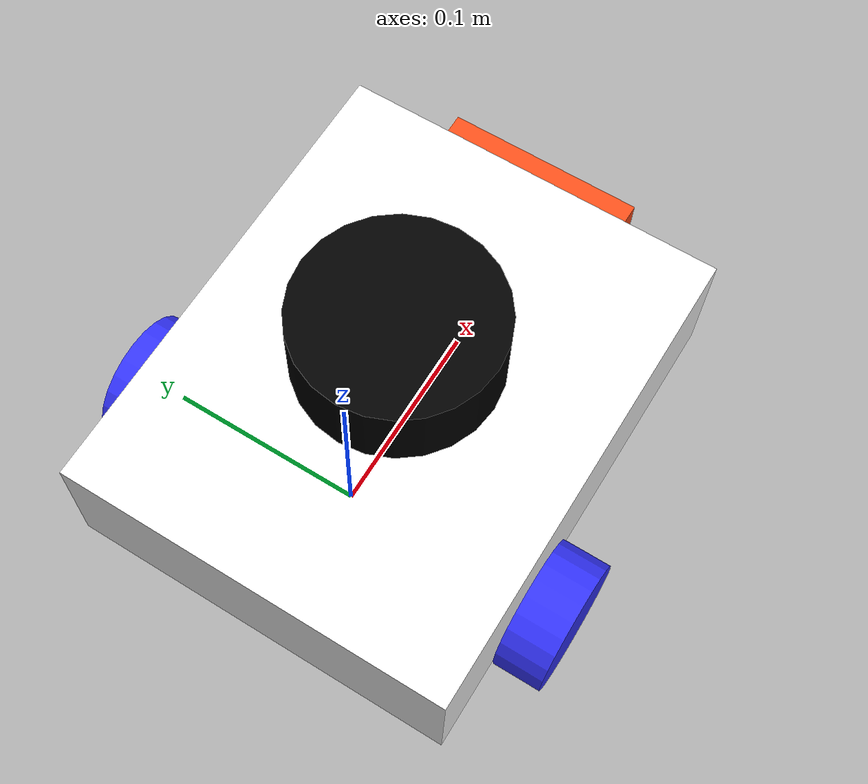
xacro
<?xml version="1.0"?>
<robot xmlns:xacro="http://www.ros.org/wiki/xacro"  name="robot">
  <xacro:include filename="gazebo_control.xacro"/>
  <xacro:include filename="inertial_macro.xacro"/>
  <xacro:include filename="lidar.xacro"/>
  <xacro:include filename="depth_camera.xacro"/>
  <xacro:include filename="robot_core.xacro"/>

</robot>

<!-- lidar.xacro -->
<robot xmlns:xacro="http://www.ros.org/wiki/xacro" >

    <joint name="laser_joint" type="fixed">
        <parent link="chassis_link"/>
        <child link="laser_frame"/>
        <origin xyz="0.1235 0 0.1" rpy="0 0 0"/>
    </joint>

    <link name="laser_frame">
        <visual>
            <geometry>
                <cylinder radius="0.05" length="0.04"/>
            </geometry>
            <material name="black"/>
        </visual>
        <visual>
            <origin xyz="0 0 -0.05"/>
            <geometry>
                <cylinder radius="0.01" length="0.1"/>
            </geometry>
            <material name="black"/>
        </visual>
        <collision>
            <geometry>
                <cylinder radius="0.05" length="0.04"/>
            </geometry>
        </collision>
        <xacro:inertial_cylinder mass="0.1" length="0.04" radius="0.05">
            <origin xyz="0 0 0" rpy="0 0 0"/>
        </xacro:inertial_cylinder>
    </link>

    <gazebo reference="laser_frame">
        <material>Gazebo/Black</material>

        <sensor name="laser" type="ray">
            <pose> 0 0 0 0 0 0 </pose>
            <visualize>true</visualize>
            <update_rate>10</update_rate>
            <ray>
                <scan>
                    <horizontal>
                        <samples>360</samples>
                        <min_angle>-3.14</min_angle>
                        <max_angle>3.14</max_angle>
                    </horizontal>
                </scan>
                <range>
                    <min>0.3</min>
                    <max>12</max>
                </range>
            </ray>
            <plugin name="laser_controller" filename="libgazebo_ros_ray_sensor.so">
                <ros>
                    <argument>~/out:=scan</argument>
                </ros>
                <output_type>sensor_msgs/LaserScan</output_type>
                <frame_name>laser_frame</frame_name>
            </plugin>
        </sensor>
    </gazebo>

</robot>

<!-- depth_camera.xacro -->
<robot xmlns:xacro="http://www.ros.org/wiki/xacro" >

    <joint name="camera_joint" type="fixed">
        <parent link="chassis_link"/>
        <child link="camera_link"/>
        <origin xyz="0.25 0 0.05" rpy="0 0 0"/>
    </joint>
5
    <link name="camera_link">
        <visual>
            <geometry>
                <box size="0.02 0.1 0.025"/>
            </geometry>
            <material name="orange"/>
        </visual>
     </link>

    <joint name="camera_optical_joint" type="fixed">
        <parent link="camera_link"/>
        <child link="camera_link_optical"/>
        <origin xyz="0 0 0" rpy="${-pi/2} 0 ${-pi/2}"/>
    </joint>

    <link name="camera_link_optical"></link>

    <gazebo reference="camera_link">
        <material>Gazebo/Orange</material>

        <sensor name="camera" type="depth">
            <pose> 0 0 0 0 0 0 </pose>
            <visualize>true</visualize>
            <update_rate>10</update_rate>
            <camera>
                <horizontal_fov>1.089</horizontal_fov>
                <image>
                    <format>B8G8R8</format>
                    <width>640</width>
                    <height>480</height>
                </image>
                <clip>
                    <near>0.05</near>
                    <far>8.0</far>
                </clip>
            </camera>
            <plugin name="camera_controller" filename="libgazebo_ros_camera.so">
                <frame_name>camera_link_optical</frame_name>
                <min_depth>0.1</min_depth>
                <max_depth>100.0</max_depth>
            </plugin>
        </sensor>
    </gazebo>

</robot>

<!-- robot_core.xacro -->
<robot xmlns:xacro="http://www.ros.org/wiki/xacro">

<material name="white">
    <color rgba=" 1 1 1 1" />
   </material>
   <material name="orange">
    <color rgba=" 1 0.3 0.1 1" />
   </material>
   <material name="blue">
    <color rgba=" 0.2 0.2 1 1" />
   </material>
   <material name="black">
    <color rgba=" 0 0 0 1" />
   </material>
   <material name="red">
    <color rgba=" 1 0 0 1" />
   </material>

<!-- BASE LINK -->
   <link name="base_link">

   </link>

   <joint name="chassis_joint" type="fixed">
    <parent link="base_link"/>
    <child link="chassis_link"/>
    <origin xyz="-0.08 0.0 0.0" rpy="0.0 0.0 0.0"/>
   </joint>

  <!-- CHASSIS LINK  -->
  <link name="chassis_link">
    <visual>
      <geometry>
        <box size="0.247 0.2 0.068"/>
      </geometry>
      <material name="white" />
      <origin xyz="0.1235 0.0 0.034" rpy="0.0 0.0 0.0"/>
    </visual>
     <collision>
        <geometry>
          <box size="0.247 0.2 0.068"/>
        </geometry>
        <origin xyz="0.1235 0.0 0.034" rpy="0.0 0.0 0.0"/>
      </collision>
      <xacro:inertial_box mass="0.1" x="0.247" y="0.2" z="0.068">
        <origin xyz="0.1235 0.0 0.034" rpy="0.0 0.0 0.0"/>
      </xacro:inertial_box >
  </link>

  <gazebo reference="chassis">
    <material>Gazebo/White</material>
  </gazebo>

  <!-- LEFT WHEEL -->
  <joint name="left_wheel_joint" type="continuous">
    <parent link="base_link"/>
    <child link="left_wheel_link"/>
    <axis xyz="0 0 1"/>
    <origin xyz="0 0.1125 0" rpy="-${pi/2} 0 0"/>
  </joint>

  <link name="left_wheel_link">
    <visual>
    <geometry>
      <cylinder radius="0.03375" length="0.025"/>
    </geometry>
    <origin xyz="0.0 0.0 0.0" rpy="0.0 0.0 0.0"/>
    <material name="blue" />
    </visual>
    <collision>
      <geometry>
        <cylinder radius="0.03375" length="0.025"/>
      </geometry>
      <origin xyz="0.0 0.0 0.0" rpy="0.0 0.0 0.0"/>
    </collision>
    <xacro:inertial_cylinder mass="0.5" radius="0.0675" length="0.025" >
      <origin xyz="0.0 0.0 0.0" rpy="0.0 0.0 0.0"/>
    </xacro:inertial_cylinder >
  </link>
  <gazebo reference="left_wheel_link">
    <material>Gazebo/Blue</material>
  </gazebo>

    <!-- RIGHT WHEEL -->
  <joint name="right_wheel_joint" type="continuous">
    <parent link="base_link"/>
    <child link="right_wheel_link"/>
    <axis xyz="0 0 -1"/>
    <origin xyz="0 -0.1125  0" rpy="${pi/2} 0 0"/>
  </joint>

  <link name="right_wheel_link">
    <visual>
    <geometry>
      <cylinder radius="0.03375" length="0.025"/>
    </geometry>
    <origin xyz="0.0 0.0 0.0" rpy="0.0 0.0 0.0"/>
    <material name="blue" />
    </visual>
    <collision>
      <geometry>
        <cylinder radius="0.03375" length="0.025"/>
      </geometry>
      <origin xyz="0.0 0.0 0.0" rpy="0.0 0.0 0.0"/>
    </collision>
     <xacro:inertial_cylinder mass="0.5" radius="0.0675" length="0.025" >
           <origin xyz="0.0 0.0 0.0" rpy="0.0 0.0 0.0"/>
     </xacro:inertial_cylinder >
  </link>

  <gazebo reference="right_wheel_link">
    <material>Gazebo/Blue</material>
  </gazebo>

    <!-- CASTER WHEEL LINK -->

  <joint name="caster_wheel_joint" type="fixed">
    <parent link="chassis_link"/>
    <child link="caster_wheel_link"/>
    <origin xyz="0.185 0.0 0.0" rpy="0.0 0.0 0.0"/>
  </joint>

  <link name="caster_wheel_link">
    <visual>
      <geometry>
        <sphere radius="0.03375"/>
      </geometry>
      <material name="red" />
    <origin xyz="0.016875 0.0 0.0" rpy="0.0 0.0 0.0"/>
    </visual>
    <collision>
      <origin xyz="0.016875 0.0 0.0" rpy="0.0 0.0 0.0"/>
      <geometry>
        <sphere radius="0.03375"/>
      </geometry>
    </collision>
     <xacro:inertial_sphere mass="0.2" radius="0.03375">
      <origin xyz="0.016875 0.0 0.0" rpy="0.0 0.0 0.0"/>
     </xacro:inertial_sphere>
  </link>

   <gazebo reference="caster_wheel_link">
    <material>Gazebo/Red</material>
    <mu1 value="0.001" />
    <mu2 value="0.001" />

  </gazebo>

</robot>
